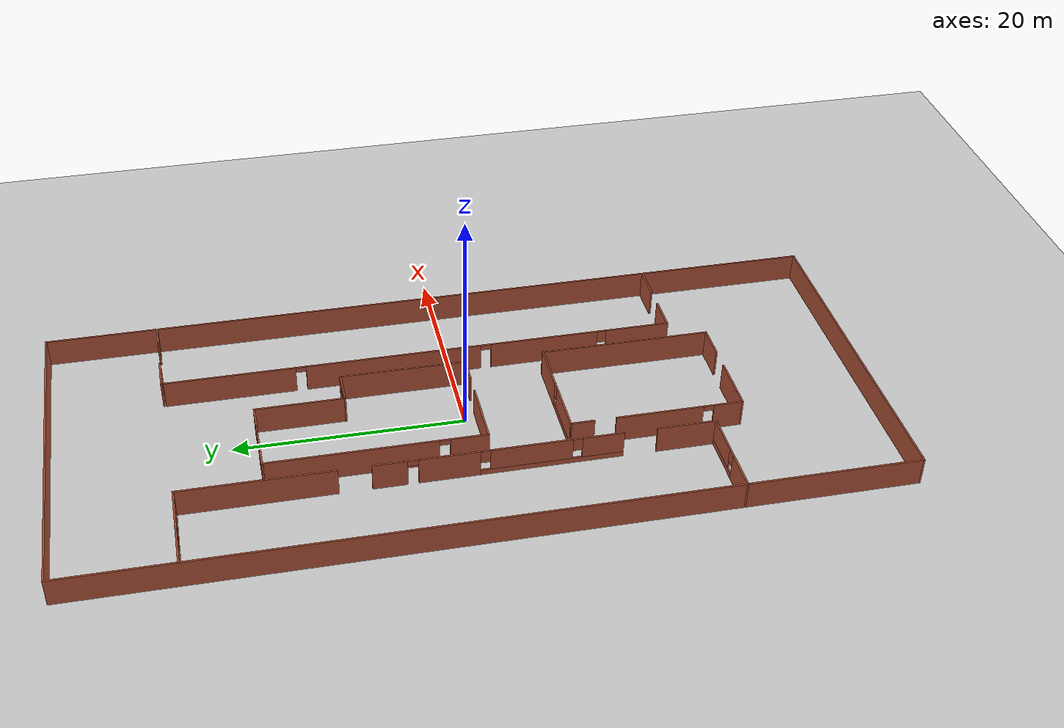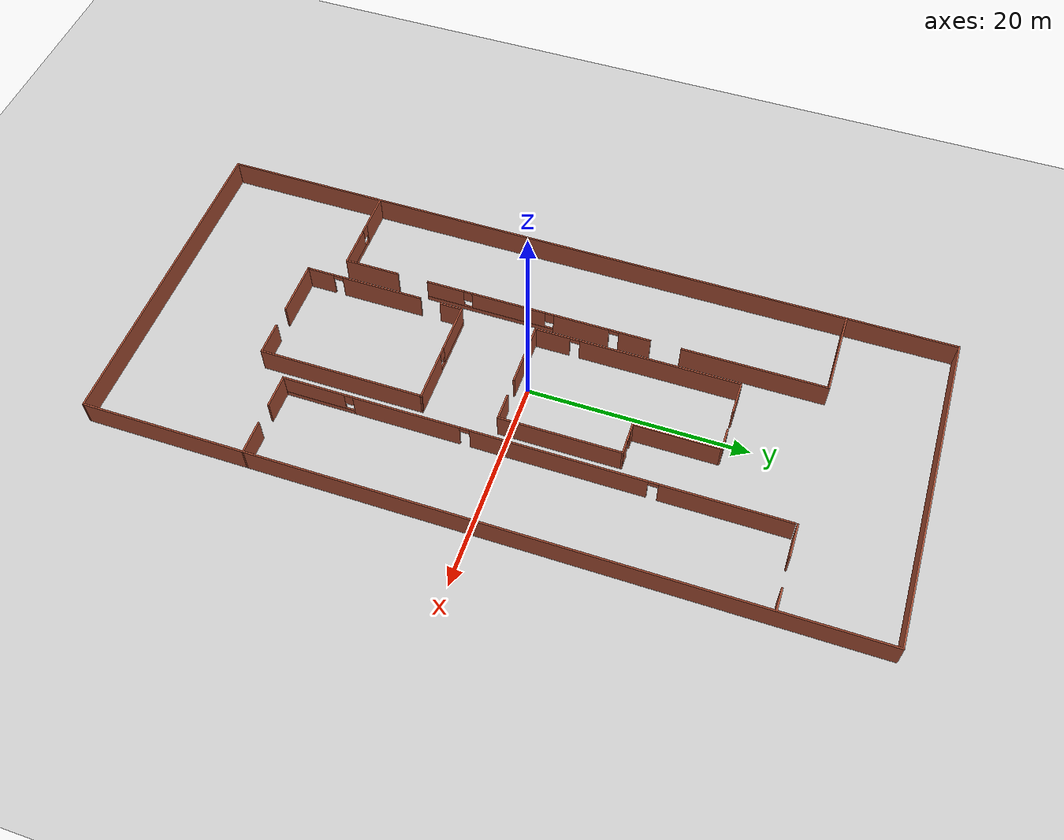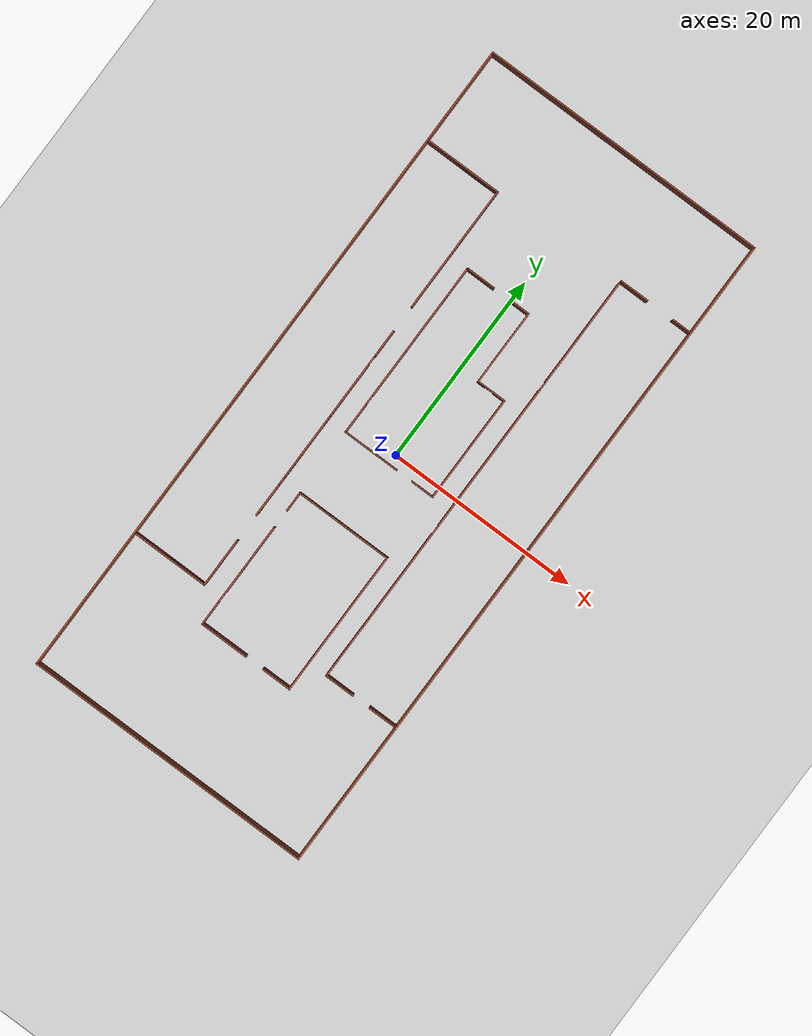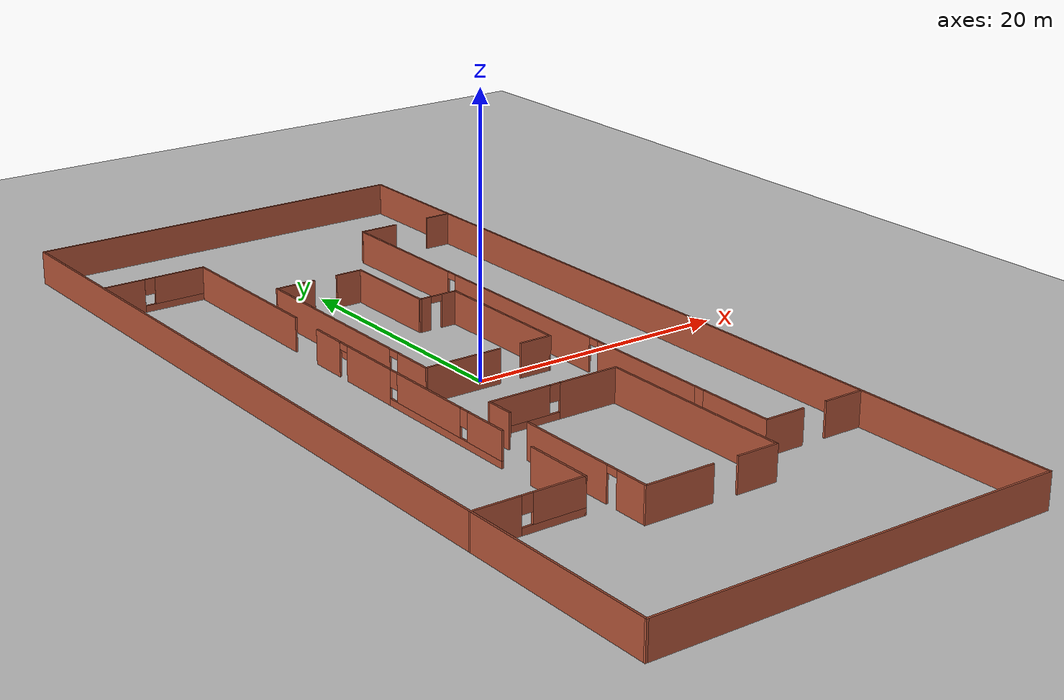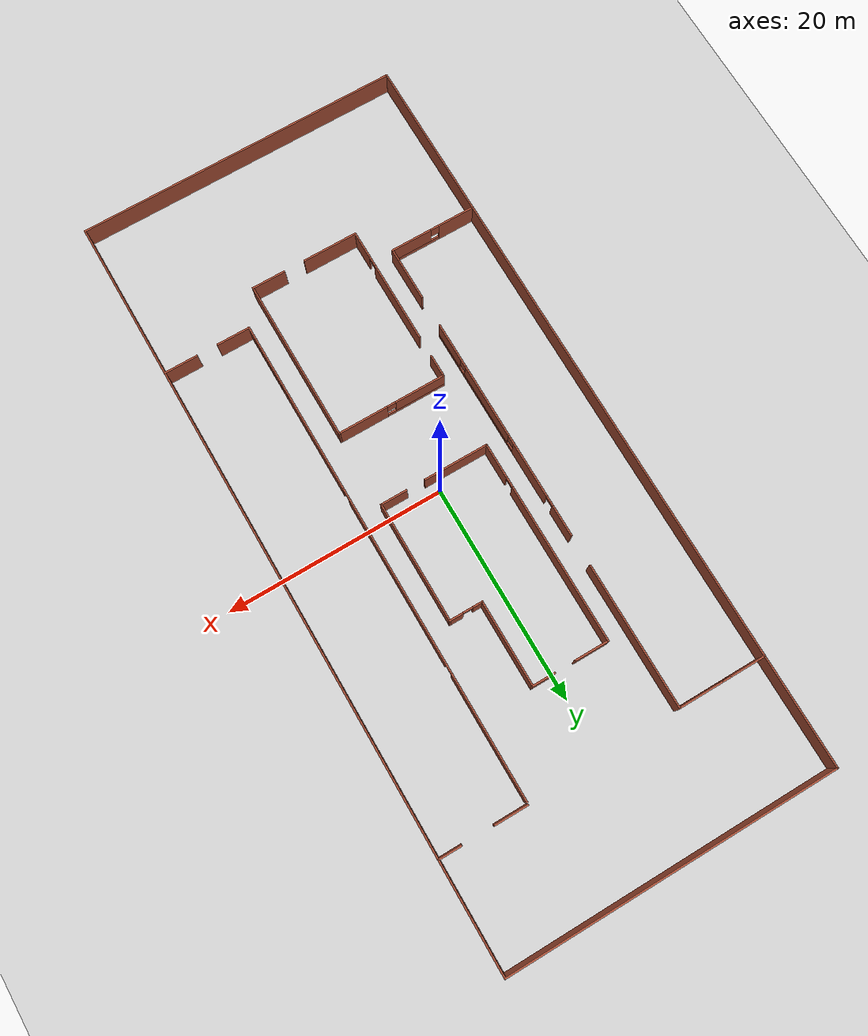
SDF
<sdf version="1.7">
 <world name="world">
  <gravity>0 0 -9.8</gravity>
  <physics name="default_physics" default="0" type="ode">
   <max_step_size>0.001</max_step_size>
   <real_time_factor>1</real_time_factor>
   <real_time_update_rate>1000</real_time_update_rate>
  </physics>
  <scene><ambient>0.6 0.6 0.6 1</ambient><background>0.4 0.4 0.4 1</background><shadows>0</shadows></scene>
  <plugin name="gazebo_ros_state" filename="libgazebo_ros_state.so">
   <ros>
    <namespace>/gazebo</namespace>
    <argument>model_states:=model_states</argument>
    <argument>link_states:=link_states</argument>
   </ros>
   <update_rate>15.0</update_rate>
  </plugin>
  <light name="sun" type="directional">
   <pose>0 0 10 0 -0 0</pose>
   <diffuse>0.8 0.8 0.8 1</diffuse>
   <specular>0.2 0.2 0.2 1</specular>
   <attenuation>
    <range>1000</range>
    <constant>0.9</constant>
    <linear>0.01</linear>
    <quadratic>0.001</quadratic>
   </attenuation>
   <direction>-0.5 0.1 -0.9</direction>
   <spot><inner_angle>0</inner_angle><outer_angle>0</outer_angle><falloff>0</falloff></spot>
  </light>
  <model name="ground_plane">
   <static>1</static>
   <link name="link">
    <collision name="collision">
     <geometry><plane><normal>0 0 1</normal><size>100 100</size></plane></geometry>
     <surface>
      <contact><collide_bitmask>65535</collide_bitmask></contact>
      <friction><ode><mu>100</mu><mu2>50</mu2></ode></friction>
     </surface>
    </collision>
    <visual name="visual">
     <cast_shadows>0</cast_shadows>
     <geometry><plane><normal>0 0 1</normal><size>100 100</size></plane></geometry>
     <material>
      <script><uri>file://media/materials/scripts/gazebo.material</uri><name>Gazebo/Grey</name></script>
     </material>
    </visual>
   </link>
   <pose>0 0 -0.1 0 -0 0</pose>
  </model>
  <model name="env">
   <link name="Wall_0">
    <collision name="Wall_0_Collision">
     <geometry><box><size>30.15 0.15 2.5</size></box></geometry>
     <pose>0 0 1.25 0 -0 0</pose>
    </collision>
    <visual name="Wall_0_Visual">
     <pose>0 0 1.25 0 -0 0</pose>
     <geometry><box><size>30.15 0.15 2.5</size></box></geometry>
     <material>
      <script><uri>file://media/materials/scripts/gazebo.material</uri><name>Gazebo/Bricks</name></script>
      <ambient>1 1 1 1</ambient>
     </material>
     <meta><layer>0</layer></meta>
    </visual>
    <pose>0 35 0 0 -0 0</pose>
   </link>
   <link name="Wall_1">
    <collision name="Wall_1_Collision">
     <geometry><box><size>70.15 0.15 2.5</size></box></geometry>
     <pose>0 0 1.25 0 -0 0</pose>
    </collision>
    <visual name="Wall_1_Visual">
     <pose>0 0 1.25 0 -0 0</pose>
     <geometry><box><size>70.15 0.15 2.5</size></box></geometry>
     <material>
      <script><uri>file://media/materials/scripts/gazebo.material</uri><name>Gazebo/Bricks</name></script>
      <ambient>1 1 1 1</ambient>
     </material>
     <meta><layer>0</layer></meta>
    </visual>
    <pose>15 0 0 0 -0 -1.5708</pose>
   </link>
   <link name="Wall_11">
    <pose>7 2.5 0 0 -0 -1.5708</pose>
    <visual name="Wall_11_Visual_0">
     <pose>-16.864 0 1.25 0 -0 0</pose>
     <geometry><box><size>11.4221 0.15 2.5</size></box></geometry>
     <material>
      <script><uri>file://media/materials/scripts/gazebo.material</uri><name>Gazebo/Bricks</name></script>
      <ambient>1 1 1 1</ambient>
     </material>
     <meta><layer>0</layer></meta>
    </visual>
    <collision name="Wall_11_Collision_0">
     <geometry><box><size>11.4221 0.15 2.5</size></box></geometry>
     <pose>-16.864 0 1.25 0 -0 0</pose>
    </collision>
    <visual name="Wall_11_Visual_1">
     <pose>-2.45817 0 1.25 0 -0 0</pose>
     <geometry><box><size>15.5895 0.15 2.5</size></box></geometry>
     <material>
      <script><uri>file://media/materials/scripts/gazebo.material</uri><name>Gazebo/Bricks</name></script>
      <ambient>1 1 1 1</ambient>
     </material>
     <meta><layer>0</layer></meta>
    </visual>
    <collision name="Wall_11_Collision_1">
     <geometry><box><size>15.5895 0.15 2.5</size></box></geometry>
     <pose>-2.45817 0 1.25 0 -0 0</pose>
    </collision>
    <visual name="Wall_11_Visual_2">
     <pose>11.1101 0 1.25 0 -0 0</pose>
     <geometry><box><size>9.74712 0.15 2.5</size></box></geometry>
     <material>
      <script><uri>file://media/materials/scripts/gazebo.material</uri><name>Gazebo/Bricks</name></script>
      <ambient>1 1 1 1</ambient>
     </material>
     <meta><layer>0</layer></meta>
    </visual>
    <collision name="Wall_11_Collision_2">
     <geometry><box><size>9.74712 0.15 2.5</size></box></geometry>
     <pose>11.1101 0 1.25 0 -0 0</pose>
    </collision>
    <visual name="Wall_11_Visual_3">
     <pose>19.2793 0 0.25 0 -0 0</pose>
     <geometry><box><size>6.59132 0.15 0.5</size></box></geometry>
     <material>
      <script><uri>file://media/materials/scripts/gazebo.material</uri><name>Gazebo/Bricks</name></script>
      <ambient>1 1 1 1</ambient>
     </material>
     <meta><layer>0</layer></meta>
    </visual>
    <collision name="Wall_11_Collision_3">
     <geometry><box><size>6.59132 0.15 0.5</size></box></geometry>
     <pose>19.2793 0 0.25 0 -0 0</pose>
    </collision>
    <visual name="Wall_11_Visual_4">
     <pose>19.6793 0 1.5 0 -0 0</pose>
     <geometry><box><size>5.79132 0.15 2</size></box></geometry>
     <material>
      <script><uri>file://media/materials/scripts/gazebo.material</uri><name>Gazebo/Bricks</name></script>
      <ambient>1 1 1 1</ambient>
     </material>
     <meta><layer>0</layer></meta>
    </visual>
    <collision name="Wall_11_Collision_4">
     <geometry><box><size>5.79132 0.15 2</size></box></geometry>
     <pose>19.6793 0 1.5 0 -0 0</pose>
    </collision>
    <visual name="Wall_11_Visual_5">
     <pose>16.3837 0 1.9 0 -0 0</pose>
     <geometry><box><size>0.8 0.15 1.2</size></box></geometry>
     <material>
      <script><uri>file://media/materials/scripts/gazebo.material</uri><name>Gazebo/Bricks</name></script>
      <ambient>1 1 1 1</ambient>
     </material>
     <meta><layer>0</layer></meta>
    </visual>
    <collision name="Wall_11_Collision_5">
     <geometry><box><size>0.8 0.15 1.2</size></box></geometry>
     <pose>16.3837 0 1.9 0 -0 0</pose>
    </collision>
    <visual name="Wall_11_Visual_6">
     <pose>-10.7029 0 2.25 0 -0 0</pose>
     <geometry><box><size>0.9 0.15 0.5</size></box></geometry>
     <material>
      <script><uri>file://media/materials/scripts/gazebo.material</uri><name>Gazebo/Bricks</name></script>
      <ambient>1 1 1 1</ambient>
     </material>
     <meta><layer>0</layer></meta>
    </visual>
    <collision name="Wall_11_Collision_6">
     <geometry><box><size>0.9 0.15 0.5</size></box></geometry>
     <pose>-10.7029 0 2.25 0 -0 0</pose>
    </collision>
    <visual name="Wall_11_Visual_7">
     <pose>5.78656 0 2.25 0 -0 0</pose>
     <geometry><box><size>0.9 0.15 0.5</size></box></geometry>
     <material>
      <script><uri>file://media/materials/scripts/gazebo.material</uri><name>Gazebo/Bricks</name></script>
      <ambient>1 1 1 1</ambient>
     </material>
     <meta><layer>0</layer></meta>
    </visual>
    <collision name="Wall_11_Collision_7">
     <geometry><box><size>0.9 0.15 0.5</size></box></geometry>
     <pose>5.78656 0 2.25 0 -0 0</pose>
    </collision>
   </link>
   <link name="Wall_19">
    <pose>-11 25 0 0 -0 0</pose>
    <visual name="Wall_19_Visual_0">
     <pose>-2.43731 0 1.25 0 -0 0</pose>
     <geometry><box><size>3.27537 0.15 2.5</size></box></geometry>
     <material>
      <script><uri>file://media/materials/scripts/gazebo.material</uri><name>Gazebo/Bricks</name></script>
      <ambient>1 1 1 1</ambient>
     </material>
     <meta><layer>0</layer></meta>
    </visual>
    <collision name="Wall_19_Collision_0">
     <geometry><box><size>3.27537 0.15 2.5</size></box></geometry>
     <pose>-2.43731 0 1.25 0 -0 0</pose>
    </collision>
    <visual name="Wall_19_Visual_1">
     <pose>1.63769 0 0.25 0 -0 0</pose>
     <geometry><box><size>4.87462 0.15 0.5</size></box></geometry>
     <material>
      <script><uri>file://media/materials/scripts/gazebo.material</uri><name>Gazebo/Bricks</name></script>
      <ambient>1 1 1 1</ambient>
     </material>
     <meta><layer>0</layer></meta>
    </visual>
    <collision name="Wall_19_Collision_1">
     <geometry><box><size>4.87462 0.15 0.5</size></box></geometry>
     <pose>1.63769 0 0.25 0 -0 0</pose>
    </collision>
    <visual name="Wall_19_Visual_2">
     <pose>2.03769 0 1.5 0 -0 0</pose>
     <geometry><box><size>4.07463 0.15 2</size></box></geometry>
     <material>
      <script><uri>file://media/materials/scripts/gazebo.material</uri><name>Gazebo/Bricks</name></script>
      <ambient>1 1 1 1</ambient>
     </material>
     <meta><layer>0</layer></meta>
    </visual>
    <collision name="Wall_19_Collision_2">
     <geometry><box><size>4.07463 0.15 2</size></box></geometry>
     <pose>2.03769 0 1.5 0 -0 0</pose>
    </collision>
    <visual name="Wall_19_Visual_3">
     <pose>-0.399625 0 1.9 0 -0 0</pose>
     <geometry><box><size>0.8 0.15 1.2</size></box></geometry>
     <material>
      <script><uri>file://media/materials/scripts/gazebo.material</uri><name>Gazebo/Bricks</name></script>
      <ambient>1 1 1 1</ambient>
     </material>
     <meta><layer>0</layer></meta>
    </visual>
    <collision name="Wall_19_Collision_3">
     <geometry><box><size>0.8 0.15 1.2</size></box></geometry>
     <pose>-0.399625 0 1.9 0 -0 0</pose>
    </collision>
   </link>
   <link name="Wall_2">
    <collision name="Wall_2_Collision">
     <geometry><box><size>30.15 0.15 2.5</size></box></geometry>
     <pose>0 0 1.25 0 -0 0</pose>
    </collision>
    <visual name="Wall_2_Visual">
     <pose>0 0 1.25 0 -0 0</pose>
     <geometry><box><size>30.15 0.15 2.5</size></box></geometry>
     <material>
      <script><uri>file://media/materials/scripts/gazebo.material</uri><name>Gazebo/Bricks</name></script>
      <ambient>1 1 1 1</ambient>
     </material>
     <meta><layer>0</layer></meta>
    </visual>
    <pose>0 -35 0 0 -0 3.14159</pose>
   </link>
   <link name="Wall_21">
    <collision name="Wall_21_Collision">
     <geometry><box><size>13.25 0.15 2.5</size></box></geometry>
     <pose>0 0 1.25 0 -0 0</pose>
    </collision>
    <visual name="Wall_21_Visual">
     <pose>0 0 1.25 0 -0 0</pose>
     <geometry><box><size>13.25 0.15 2.5</size></box></geometry>
     <material>
      <script><uri>file://media/materials/scripts/gazebo.material</uri><name>Gazebo/Bricks</name></script>
      <ambient>1 1 1 1</ambient>
     </material>
     <meta><layer>0</layer></meta>
    </visual>
    <pose>-7 18.45 0 0 -0 -1.5708</pose>
   </link>
   <link name="Wall_24">
    <pose>-7 -1.5 0 0 -0 -1.5708</pose>
    <visual name="Wall_24_Visual_0">
     <pose>-9.10782 0 1.25 0 -0 0</pose>
     <geometry><box><size>2.93436 0.15 2.5</size></box></geometry>
     <material>
      <script><uri>file://media/materials/scripts/gazebo.material</uri><name>Gazebo/Bricks</name></script>
      <ambient>1 1 1 1</ambient>
     </material>
     <meta><layer>0</layer></meta>
    </visual>
    <collision name="Wall_24_Collision_0">
     <geometry><box><size>2.93436 0.15 2.5</size></box></geometry>
     <pose>-9.10782 0 1.25 0 -0 0</pose>
    </collision>
    <visual name="Wall_24_Visual_1">
     <pose>-4.14773 0 1.25 0 -0 0</pose>
     <geometry><box><size>5.1858 0.15 2.5</size></box></geometry>
     <material>
      <script><uri>file://media/materials/scripts/gazebo.material</uri><name>Gazebo/Bricks</name></script>
      <ambient>1 1 1 1</ambient>
     </material>
     <meta><layer>0</layer></meta>
    </visual>
    <collision name="Wall_24_Collision_1">
     <geometry><box><size>5.1858 0.15 2.5</size></box></geometry>
     <pose>-4.14773 0 1.25 0 -0 0</pose>
    </collision>
    <visual name="Wall_24_Visual_2">
     <pose>4.51008 0 0.25 0 -0 0</pose>
     <geometry><box><size>12.1298 0.15 0.5</size></box></geometry>
     <material>
      <script><uri>file://media/materials/scripts/gazebo.material</uri><name>Gazebo/Bricks</name></script>
      <ambient>1 1 1 1</ambient>
     </material>
     <meta><layer>0</layer></meta>
    </visual>
    <collision name="Wall_24_Collision_2">
     <geometry><box><size>12.1298 0.15 0.5</size></box></geometry>
     <pose>4.51008 0 0.25 0 -0 0</pose>
    </collision>
    <visual name="Wall_24_Visual_3">
     <pose>2.7289 0 1.5 0 -0 0</pose>
     <geometry><box><size>6.96747 0.15 2</size></box></geometry>
     <material>
      <script><uri>file://media/materials/scripts/gazebo.material</uri><name>Gazebo/Bricks</name></script>
      <ambient>1 1 1 1</ambient>
     </material>
     <meta><layer>0</layer></meta>
    </visual>
    <collision name="Wall_24_Collision_3">
     <geometry><box><size>6.96747 0.15 2</size></box></geometry>
     <pose>2.7289 0 1.5 0 -0 0</pose>
    </collision>
    <visual name="Wall_24_Visual_4">
     <pose>8.79382 0 1.5 0 -0 0</pose>
     <geometry><box><size>3.56236 0.15 2</size></box></geometry>
     <material>
      <script><uri>file://media/materials/scripts/gazebo.material</uri><name>Gazebo/Bricks</name></script>
      <ambient>1 1 1 1</ambient>
     </material>
     <meta><layer>0</layer></meta>
    </visual>
    <collision name="Wall_24_Collision_4">
     <geometry><box><size>3.56236 0.15 2</size></box></geometry>
     <pose>8.79382 0 1.5 0 -0 0</pose>
    </collision>
    <visual name="Wall_24_Visual_5">
     <pose>-1.15483 0 1.9 0 -0 0</pose>
     <geometry><box><size>0.8 0.15 1.2</size></box></geometry>
     <material>
      <script><uri>file://media/materials/scripts/gazebo.material</uri><name>Gazebo/Bricks</name></script>
      <ambient>1 1 1 1</ambient>
     </material>
     <meta><layer>0</layer></meta>
    </visual>
    <collision name="Wall_24_Collision_5">
     <geometry><box><size>0.8 0.15 1.2</size></box></geometry>
     <pose>-1.15483 0 1.9 0 -0 0</pose>
    </collision>
    <visual name="Wall_24_Visual_6">
     <pose>6.61264 0 1.9 0 -0 0</pose>
     <geometry><box><size>0.8 0.15 1.2</size></box></geometry>
     <material>
      <script><uri>file://media/materials/scripts/gazebo.material</uri><name>Gazebo/Bricks</name></script>
      <ambient>1 1 1 1</ambient>
     </material>
     <meta><layer>0</layer></meta>
    </visual>
    <collision name="Wall_24_Collision_6">
     <geometry><box><size>0.8 0.15 1.2</size></box></geometry>
     <pose>6.61264 0 1.9 0 -0 0</pose>
    </collision>
    <visual name="Wall_24_Visual_7">
     <pose>-7.19064 0 2.25 0 -0 0</pose>
     <geometry><box><size>0.9 0.15 0.5</size></box></geometry>
     <material>
      <script><uri>file://media/materials/scripts/gazebo.material</uri><name>Gazebo/Bricks</name></script>
      <ambient>1 1 1 1</ambient>
     </material>
     <meta><layer>0</layer></meta>
    </visual>
    <collision name="Wall_24_Collision_7">
     <geometry><box><size>0.9 0.15 0.5</size></box></geometry>
     <pose>-7.19064 0 2.25 0 -0 0</pose>
    </collision>
   </link>
   <link name="Wall_26">
    <collision name="Wall_26_Collision">
     <geometry><box><size>5.15 0.15 2.5</size></box></geometry>
     <pose>0 0 1.25 0 -0 0</pose>
    </collision>
    <visual name="Wall_26_Visual">
     <pose>0 0 1.25 0 -0 0</pose>
     <geometry><box><size>5.15 0.15 2.5</size></box></geometry>
     <material>
      <script><uri>file://media/materials/scripts/gazebo.material</uri><name>Gazebo/Bricks</name></script>
      <ambient>1 1 1 1</ambient>
     </material>
     <meta><layer>0</layer></meta>
    </visual>
    <pose>-7 -17.5 0 0 -0 1.5708</pose>
   </link>
   <link name="Wall_29">
    <collision name="Wall_29_Collision">
     <geometry><box><size>15.15 0.15 2.5</size></box></geometry>
     <pose>0 0 1.25 0 -0 0</pose>
    </collision>
    <visual name="Wall_29_Visual">
     <pose>0 0 1.25 0 -0 0</pose>
     <geometry><box><size>15.15 0.15 2.5</size></box></geometry>
     <material>
      <script><uri>file://media/materials/scripts/gazebo.material</uri><name>Gazebo/Bricks</name></script>
      <ambient>1 1 1 1</ambient>
     </material>
     <meta><layer>0</layer></meta>
    </visual>
    <pose>5 -15.5 0 0 -0 1.5708</pose>
   </link>
   <link name="Wall_3">
    <collision name="Wall_3_Collision">
     <geometry><box><size>70.15 0.15 2.5</size></box></geometry>
     <pose>0 0 1.25 0 -0 0</pose>
    </collision>
    <visual name="Wall_3_Visual">
     <pose>0 0 1.25 0 -0 0</pose>
     <geometry><box><size>70.15 0.15 2.5</size></box></geometry>
     <material>
      <script><uri>file://media/materials/scripts/gazebo.material</uri><name>Gazebo/Bricks</name></script>
      <ambient>1 1 1 1</ambient>
     </material>
     <meta><layer>0</layer></meta>
    </visual>
    <pose>-15 0 0 0 -0 1.5708</pose>
   </link>
   <link name="Wall_30">
    <pose>0 -8 0 0 -0 3.14159</pose>
    <visual name="Wall_30_Visual_0">
     <pose>-2.75651 0 1.25 0 -0 0</pose>
     <geometry><box><size>4.63697 0.15 2.5</size></box></geometry>
     <material>
      <script><uri>file://media/materials/scripts/gazebo.material</uri><name>Gazebo/Bricks</name></script>
      <ambient>1 1 1 1</ambient>
     </material>
     <meta><layer>0</layer></meta>
    </visual>
    <collision name="Wall_30_Collision_0">
     <geometry><box><size>4.63697 0.15 2.5</size></box></geometry>
     <pose>-2.75651 0 1.25 0 -0 0</pose>
    </collision>
    <visual name="Wall_30_Visual_1">
     <pose>2.31848 0 0.25 0 -0 0</pose>
     <geometry><box><size>5.51303 0.15 0.5</size></box></geometry>
     <material>
      <script><uri>file://media/materials/scripts/gazebo.material</uri><name>Gazebo/Bricks</name></script>
      <ambient>1 1 1 1</ambient>
     </material>
     <meta><layer>0</layer></meta>
    </visual>
    <collision name="Wall_30_Collision_1">
     <geometry><box><size>5.51303 0.15 0.5</size></box></geometry>
     <pose>2.31848 0 0.25 0 -0 0</pose>
    </collision>
    <visual name="Wall_30_Visual_2">
     <pose>2.71848 0 1.5 0 -0 0</pose>
     <geometry><box><size>4.71303 0.15 2</size></box></geometry>
     <material>
      <script><uri>file://media/materials/scripts/gazebo.material</uri><name>Gazebo/Bricks</name></script>
      <ambient>1 1 1 1</ambient>
     </material>
     <meta><layer>0</layer></meta>
    </visual>
    <collision name="Wall_30_Collision_2">
     <geometry><box><size>4.71303 0.15 2</size></box></geometry>
     <pose>2.71848 0 1.5 0 -0 0</pose>
    </collision>
    <visual name="Wall_30_Visual_3">
     <pose>-0.038031 0 1.9 0 -0 0</pose>
     <geometry><box><size>0.8 0.15 1.2</size></box></geometry>
     <material>
      <script><uri>file://media/materials/scripts/gazebo.material</uri><name>Gazebo/Bricks</name></script>
      <ambient>1 1 1 1</ambient>
     </material>
     <meta><layer>0</layer></meta>
    </visual>
    <collision name="Wall_30_Collision_3">
     <geometry><box><size>0.8 0.15 1.2</size></box></geometry>
     <pose>-0.038031 0 1.9 0 -0 0</pose>
    </collision>
   </link>
   <link name="Wall_35">
    <collision name="Wall_35_Collision">
     <geometry><box><size>11.15 0.15 2.5</size></box></geometry>
     <pose>0 0 1.25 0 -0 0</pose>
    </collision>
    <visual name="Wall_35_Visual">
     <pose>0 0 1.25 0 -0 0</pose>
     <geometry><box><size>11.15 0.15 2.5</size></box></geometry>
     <material>
      <script><uri>file://media/materials/scripts/gazebo.material</uri><name>Gazebo/Bricks</name></script>
      <ambient>1 1 1 1</ambient>
     </material>
     <meta><layer>0</layer></meta>
    </visual>
    <pose>5 4.5 0 0 -0 1.5708</pose>
   </link>
   <link name="Wall_36">
    <pose>3.5 10 0 0 -0 3.14159</pose>
    <visual name="Wall_36_Visual_0">
     <pose>-0.932963 0 1.25 0 -0 0</pose>
     <geometry><box><size>1.28407 0.15 2.5</size></box></geometry>
     <material>
      <script><uri>file://media/materials/scripts/gazebo.material</uri><name>Gazebo/Bricks</name></script>
      <ambient>1 1 1 1</ambient>
     </material>
     <meta><layer>0</layer></meta>
    </visual>
    <collision name="Wall_36_Collision_0">
     <geometry><box><size>1.28407 0.15 2.5</size></box></geometry>
     <pose>-0.932963 0 1.25 0 -0 0</pose>
    </collision>
    <visual name="Wall_36_Visual_1">
     <pose>1.09204 0 1.25 0 -0 0</pose>
     <geometry><box><size>0.965927 0.15 2.5</size></box></geometry>
     <material>
      <script><uri>file://media/materials/scripts/gazebo.material</uri><name>Gazebo/Bricks</name></script>
      <ambient>1 1 1 1</ambient>
     </material>
     <meta><layer>0</layer></meta>
    </visual>
    <collision name="Wall_36_Collision_1">
     <geometry><box><size>0.965927 0.15 2.5</size></box></geometry>
     <pose>1.09204 0 1.25 0 -0 0</pose>
    </collision>
    <visual name="Wall_36_Visual_2">
     <pose>0.159073 0 2.25 0 -0 0</pose>
     <geometry><box><size>0.9 0.15 0.5</size></box></geometry>
     <material>
      <script><uri>file://media/materials/scripts/gazebo.material</uri><name>Gazebo/Bricks</name></script>
      <ambient>1 1 1 1</ambient>
     </material>
     <meta><layer>0</layer></meta>
    </visual>
    <collision name="Wall_36_Collision_2">
     <geometry><box><size>0.9 0.15 0.5</size></box></geometry>
     <pose>0.159073 0 2.25 0 -0 0</pose>
    </collision>
   </link>
   <link name="Wall_37">
    <collision name="Wall_37_Collision">
     <geometry><box><size>7.883 0.15 2.5</size></box></geometry>
     <pose>0 0 1.25 0 -0 0</pose>
    </collision>
    <visual name="Wall_37_Visual">
     <pose>0 0 1.25 0 -0 0</pose>
     <geometry><box><size>7.883 0.15 2.5</size></box></geometry>
     <material>
      <script><uri>file://media/materials/scripts/gazebo.material</uri><name>Gazebo/Bricks</name></script>
      <ambient>1 1 1 1</ambient>
     </material>
     <meta><layer>0</layer></meta>
    </visual>
    <pose>2 13.8665 0 0 -0 1.5708</pose>
   </link>
   <link name="Wall_39">
    <pose>-5 8.3665 0 0 -0 -1.5708</pose>
    <visual name="Wall_39_Visual_0">
     <pose>-2.10356 0 1.25 0 -0 0</pose>
     <geometry><box><size>14.6768 0.15 2.5</size></box></geometry>
     <material>
      <script><uri>file://media/materials/scripts/gazebo.material</uri><name>Gazebo/Bricks</name></script>
      <ambient>1 1 1 1</ambient>
     </material>
     <meta><layer>0</layer></meta>
    </visual>
    <collision name="Wall_39_Collision_0">
     <geometry><box><size>14.6768 0.15 2.5</size></box></geometry>
     <pose>-2.10356 0 1.25 0 -0 0</pose>
    </collision>
    <visual name="Wall_39_Visual_1">
     <pose>7.78842 0 1.25 0 -0 0</pose>
     <geometry><box><size>3.30711 0.15 2.5</size></box></geometry>
     <material>
      <script><uri>file://media/materials/scripts/gazebo.material</uri><name>Gazebo/Bricks</name></script>
      <ambient>1 1 1 1</ambient>
     </material>
     <meta><layer>0</layer></meta>
    </visual>
    <collision name="Wall_39_Collision_1">
     <geometry><box><size>3.30711 0.15 2.5</size></box></geometry>
     <pose>7.78842 0 1.25 0 -0 0</pose>
    </collision>
    <visual name="Wall_39_Visual_2">
     <pose>5.68486 0 2.25 0 -0 0</pose>
     <geometry><box><size>0.9 0.15 0.5</size></box></geometry>
     <material>
      <script><uri>file://media/materials/scripts/gazebo.material</uri><name>Gazebo/Bricks</name></script>
      <ambient>1 1 1 1</ambient>
     </material>
     <meta><layer>0</layer></meta>
    </visual>
    <collision name="Wall_39_Collision_2">
     <geometry><box><size>0.9 0.15 0.5</size></box></geometry>
     <pose>5.68486 0 2.25 0 -0 0</pose>
    </collision>
   </link>
   <link name="Wall_41">
    <pose>-5 -17.5 0 0 -0 1.5708</pose>
    <visual name="Wall_41_Visual_0">
     <pose>-4.27348 0 1.25 0 -0 0</pose>
     <geometry><box><size>2.60304 0.15 2.5</size></box></geometry>
     <material>
      <script><uri>file://media/materials/scripts/gazebo.material</uri><name>Gazebo/Bricks</name></script>
      <ambient>1 1 1 1</ambient>
     </material>
     <meta><layer>0</layer></meta>
    </visual>
    <collision name="Wall_41_Collision_0">
     <geometry><box><size>2.60304 0.15 2.5</size></box></geometry>
     <pose>-4.27348 0 1.25 0 -0 0</pose>
    </collision>
    <visual name="Wall_41_Visual_1">
     <pose>1.75152 0 1.25 0 -0 0</pose>
     <geometry><box><size>7.64696 0.15 2.5</size></box></geometry>
     <material>
      <script><uri>file://media/materials/scripts/gazebo.material</uri><name>Gazebo/Bricks</name></script>
      <ambient>1 1 1 1</ambient>
     </material>
     <meta><layer>0</layer></meta>
    </visual>
    <collision name="Wall_41_Collision_1">
     <geometry><box><size>7.64696 0.15 2.5</size></box></geometry>
     <pose>1.75152 0 1.25 0 -0 0</pose>
    </collision>
    <visual name="Wall_41_Visual_2">
     <pose>-2.52196 0 2.25 0 -0 0</pose>
     <geometry><box><size>0.9 0.15 0.5</size></box></geometry>
     <material>
      <script><uri>file://media/materials/scripts/gazebo.material</uri><name>Gazebo/Bricks</name></script>
      <ambient>1 1 1 1</ambient>
     </material>
     <meta><layer>0</layer></meta>
    </visual>
    <collision name="Wall_41_Collision_2">
     <geometry><box><size>0.9 0.15 0.5</size></box></geometry>
     <pose>-2.52196 0 2.25 0 -0 0</pose>
    </collision>
   </link>
   <link name="Wall_43">
    <collision name="Wall_43_Collision">
     <geometry><box><size>2.15 0.15 2.5</size></box></geometry>
     <pose>0 0 1.25 0 -0 0</pose>
    </collision>
    <visual name="Wall_43_Visual">
     <pose>0 0 1.25 0 -0 0</pose>
     <geometry><box><size>2.15 0.15 2.5</size></box></geometry>
     <material>
      <script><uri>file://media/materials/scripts/gazebo.material</uri><name>Gazebo/Bricks</name></script>
      <ambient>1 1 1 1</ambient>
     </material>
     <meta><layer>0</layer></meta>
    </visual>
    <pose>-5 -9 0 0 -0 -1.5708</pose>
   </link>
   <link name="Wall_45">
    <collision name="Wall_45_Collision">
     <geometry><box><size>5.15 0.15 2.5</size></box></geometry>
     <pose>0 0 1.25 0 -0 0</pose>
    </collision>
    <visual name="Wall_45_Visual">
     <pose>0 0 1.25 0 -0 0</pose>
     <geometry><box><size>5.15 0.15 2.5</size></box></geometry>
     <material>
      <script><uri>file://media/materials/scripts/gazebo.material</uri><name>Gazebo/Bricks</name></script>
      <ambient>1 1 1 1</ambient>
     </material>
     <meta><layer>0</layer></meta>
    </visual>
    <pose>-2.5 -23 0 0 -0 0</pose>
   </link>
   <link name="Wall_47">
    <collision name="Wall_47_Collision">
     <geometry><box><size>3.15 0.15 2.5</size></box></geometry>
     <pose>0 0 1.25 0 -0 0</pose>
    </collision>
    <visual name="Wall_47_Visual">
     <pose>0 0 1.25 0 -0 0</pose>
     <geometry><box><size>3.15 0.15 2.5</size></box></geometry>
     <material>
      <script><uri>file://media/materials/scripts/gazebo.material</uri><name>Gazebo/Bricks</name></script>
      <ambient>1 1 1 1</ambient>
     </material>
     <meta><layer>0</layer></meta>
    </visual>
    <pose>3.5 -23 0 0 -0 3.14159</pose>
   </link>
   <link name="Wall_49">
    <collision name="Wall_49_Collision">
     <geometry><box><size>6 0.15 2.5</size></box></geometry>
     <pose>0 0 1.25 0 -0 0</pose>
    </collision>
    <visual name="Wall_49_Visual">
     <pose>0 0 1.25 0 -0 0</pose>
     <geometry><box><size>6 0.15 2.5</size></box></geometry>
     <material>
      <script><uri>file://media/materials/scripts/gazebo.material</uri><name>Gazebo/Bricks</name></script>
      <ambient>1 1 1 1</ambient>
     </material>
     <meta><layer>0</layer></meta>
    </visual>
    <pose>-2.075 -1 0 0 -0 0</pose>
   </link>
   <link name="Wall_5">
    <pose>-11 -20 0 0 -0 0</pose>
    <visual name="Wall_5_Visual_0">
     <pose>-2.31238 0 1.25 0 -0 0</pose>
     <geometry><box><size>3.52524 0.15 2.5</size></box></geometry>
     <material>
      <script><uri>file://media/materials/scripts/gazebo.material</uri><name>Gazebo/Bricks</name></script>
      <ambient>1 1 1 1</ambient>
     </material>
     <meta><layer>0</layer></meta>
    </visual>
    <collision name="Wall_5_Collision_0">
     <geometry><box><size>3.52524 0.15 2.5</size></box></geometry>
     <pose>-2.31238 0 1.25 0 -0 0</pose>
    </collision>
    <visual name="Wall_5_Visual_1">
     <pose>1.76262 0 0.25 0 -0 0</pose>
     <geometry><box><size>4.62476 0.15 0.5</size></box></geometry>
     <material>
      <script><uri>file://media/materials/scripts/gazebo.material</uri><name>Gazebo/Bricks</name></script>
      <ambient>1 1 1 1</ambient>
     </material>
     <meta><layer>0</layer></meta>
    </visual>
    <collision name="Wall_5_Collision_1">
     <geometry><box><size>4.62476 0.15 0.5</size></box></geometry>
     <pose>1.76262 0 0.25 0 -0 0</pose>
    </collision>
    <visual name="Wall_5_Visual_2">
     <pose>2.16262 0 1.5 0 -0 0</pose>
     <geometry><box><size>3.82476 0.15 2</size></box></geometry>
     <material>
      <script><uri>file://media/materials/scripts/gazebo.material</uri><name>Gazebo/Bricks</name></script>
      <ambient>1 1 1 1</ambient>
     </material>
     <meta><layer>0</layer></meta>
    </visual>
    <collision name="Wall_5_Collision_2">
     <geometry><box><size>3.82476 0.15 2</size></box></geometry>
     <pose>2.16262 0 1.5 0 -0 0</pose>
    </collision>
    <visual name="Wall_5_Visual_3">
     <pose>-0.149762 0 1.9 0 -0 0</pose>
     <geometry><box><size>0.8 0.15 1.2</size></box></geometry>
     <material>
      <script><uri>file://media/materials/scripts/gazebo.material</uri><name>Gazebo/Bricks</name></script>
      <ambient>1 1 1 1</ambient>
     </material>
     <meta><layer>0</layer></meta>
    </visual>
    <collision name="Wall_5_Collision_3">
     <geometry><box><size>0.8 0.15 1.2</size></box></geometry>
     <pose>-0.149762 0 1.9 0 -0 0</pose>
    </collision>
   </link>
   <link name="Wall_51">
    <collision name="Wall_51_Collision">
     <geometry><box><size>2.5 0.15 2.5</size></box></geometry>
     <pose>0 0 1.25 0 -0 0</pose>
    </collision>
    <visual name="Wall_51_Visual">
     <pose>0 0 1.25 0 -0 0</pose>
     <geometry><box><size>2.5 0.15 2.5</size></box></geometry>
     <material>
      <script><uri>file://media/materials/scripts/gazebo.material</uri><name>Gazebo/Bricks</name></script>
      <ambient>1 1 1 1</ambient>
     </material>
     <meta><layer>0</layer></meta>
    </visual>
    <pose>3.825 -1 0 0 -0 3.14159</pose>
   </link>
   <link name="Wall_53">
    <collision name="Wall_53_Collision">
     <geometry><box><size>3.15 0.15 2.5</size></box></geometry>
     <pose>0 0 1.25 0 -0 0</pose>
    </collision>
    <visual name="Wall_53_Visual">
     <pose>0 0 1.25 0 -0 0</pose>
     <geometry><box><size>3.15 0.15 2.5</size></box></geometry>
     <material>
      <script><uri>file://media/materials/scripts/gazebo.material</uri><name>Gazebo/Bricks</name></script>
      <ambient>1 1 1 1</ambient>
     </material>
     <meta><layer>0</layer></meta>
    </visual>
    <pose>-3.5 17.733 0 0 -0 0</pose>
   </link>
   <link name="Wall_55">
    <collision name="Wall_55_Collision">
     <geometry><box><size>2.15 0.15 2.5</size></box></geometry>
     <pose>0 0 1.25 0 -0 0</pose>
    </collision>
    <visual name="Wall_55_Visual">
     <pose>0 0 1.25 0 -0 0</pose>
     <geometry><box><size>2.15 0.15 2.5</size></box></geometry>
     <material>
      <script><uri>file://media/materials/scripts/gazebo.material</uri><name>Gazebo/Bricks</name></script>
      <ambient>1 1 1 1</ambient>
     </material>
     <meta><layer>0</layer></meta>
    </visual>
    <pose>1 17.733 0 0 -0 3.14159</pose>
   </link>
   <link name="Wall_57">
    <collision name="Wall_57_Collision">
     <geometry><box><size>3.15 0.15 2.5</size></box></geometry>
     <pose>0 0 1.25 0 -0 0</pose>
    </collision>
    <visual name="Wall_57_Visual">
     <pose>0 0 1.25 0 -0 0</pose>
     <geometry><box><size>3.15 0.15 2.5</size></box></geometry>
     <material>
      <script><uri>file://media/materials/scripts/gazebo.material</uri><name>Gazebo/Bricks</name></script>
      <ambient>1 1 1 1</ambient>
     </material>
     <meta><layer>0</layer></meta>
    </visual>
    <pose>8.5 -20 0 0 -0 0</pose>
   </link>
   <link name="Wall_59">
    <collision name="Wall_59_Collision">
     <geometry><box><size>3.15 0.15 2.5</size></box></geometry>
     <pose>0 0 1.25 0 -0 0</pose>
    </collision>
    <visual name="Wall_59_Visual">
     <pose>0 0 1.25 0 -0 0</pose>
     <geometry><box><size>3.15 0.15 2.5</size></box></geometry>
     <material>
      <script><uri>file://media/materials/scripts/gazebo.material</uri><name>Gazebo/Bricks</name></script>
      <ambient>1 1 1 1</ambient>
     </material>
     <meta><layer>0</layer></meta>
    </visual>
    <pose>13.5 -20 0 0 -0 3.14159</pose>
   </link>
   <link name="Wall_61">
    <collision name="Wall_61_Collision">
     <geometry><box><size>3.104 0.15 2.5</size></box></geometry>
     <pose>0 0 1.25 0 -0 0</pose>
    </collision>
    <visual name="Wall_61_Visual">
     <pose>0 0 1.25 0 -0 0</pose>
     <geometry><box><size>3.104 0.15 2.5</size></box></geometry>
     <material>
      <script><uri>file://media/materials/scripts/gazebo.material</uri><name>Gazebo/Bricks</name></script>
      <ambient>1 1 1 1</ambient>
     </material>
     <meta><layer>0</layer></meta>
    </visual>
    <pose>8.523 25.234 0 0 -0 0</pose>
   </link>
   <link name="Wall_63">
    <collision name="Wall_63_Collision">
     <geometry><box><size>2.15 0.15 2.5</size></box></geometry>
     <pose>0 0 1.25 0 -0 0</pose>
    </collision>
    <visual name="Wall_63_Visual">
     <pose>0 0 1.25 0 -0 0</pose>
     <geometry><box><size>2.15 0.15 2.5</size></box></geometry>
     <material>
      <script><uri>file://media/materials/scripts/gazebo.material</uri><name>Gazebo/Bricks</name></script>
      <ambient>1 1 1 1</ambient>
     </material>
     <meta><layer>0</layer></meta>
    </visual>
    <pose>14 25.234 0 0 -0 0</pose>
   </link>
   <link name="Wall_7">
    <collision name="Wall_7_Collision">
     <geometry><box><size>0.15 0.15 2.5</size></box></geometry>
     <pose>0 0 1.25 0 -0 0</pose>
    </collision>
    <visual name="Wall_7_Visual">
     <pose>0 0 1.25 0 -0 0</pose>
     <geometry><box><size>0.15 0.15 2.5</size></box></geometry>
     <material>
      <script><uri>file://media/materials/scripts/gazebo.material</uri><name>Gazebo/Grey</name></script>
      <ambient>1 1 1 1</ambient>
     </material>
     <meta><layer>0</layer></meta>
    </visual>
    <pose>-7 25 0 0 -0 0</pose>
   </link>
   <static>1</static>
  </model>
  <magnetic_field>6e-06 2.3e-05 -4.2e-05</magnetic_field>
  <atmosphere type="adiabatic"/>
  <spherical_coordinates>
   <surface_model>EARTH_WGS84</surface_model>
   <latitude_deg>0</latitude_deg>
   <longitude_deg>0</longitude_deg>
   <elevation>0</elevation>
   <heading_deg>0</heading_deg>
  </spherical_coordinates>
  <audio><device>default</device></audio>
 </world>
</sdf>
